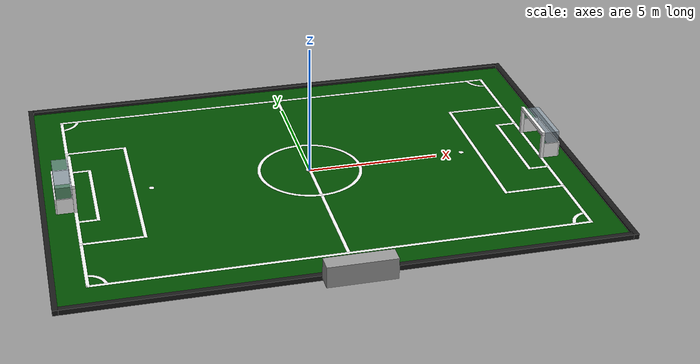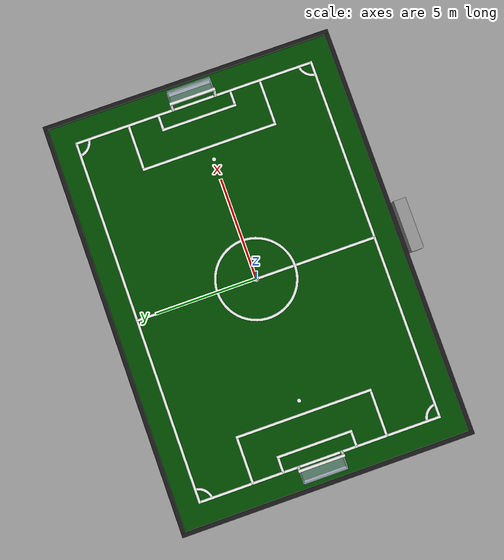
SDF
<sdf version="1.5">
 <world name="default">
  <include><uri>model://sun</uri></include>
  <physics type="ode">
   <max_step_size>0.03125</max_step_size>
   <real_time_update_rate>32</real_time_update_rate>
   <gravity>0 0 -9.8</gravity>
  </physics>
  <include><uri>model://robocup_msl_field</uri></include>
  <include><uri>model://robocup_msl_ball</uri></include>
 </world>
</sdf>

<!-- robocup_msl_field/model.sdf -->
<sdf version="1.5">
  <model name="RoboCup MSL Field">
    <static>true</static>
    <link name="field">
      <pose>0 0 0 0 0 0</pose>

      <!-- FIELD GREEN CARPET:
        Dimensions:
            X = 18m(playable)+2*1m(Spacing) = 20m
            Y = 12m(playable)+2*1m(Spacing) = 14m
    -->
      <collision name="collision">
        <geometry>
          <plane>
            <size>20 14</size>
          </plane>
        </geometry>
        <surface>
          <friction>
            <ode>
              <mu>100</mu>
              <mu2>50</mu2>
            </ode>
          </friction>
        </surface>
      </collision>
      <visual name="carpet">
        <cast_shadows>false</cast_shadows>
        <geometry>
          <plane>
            <size>20 14</size>
          </plane>
        </geometry>
        <material>
            <!-- GREEN -->
            <ambient>0.0 0.2 0.0 1.0</ambient>
            <diffuse>0.0 0.3 0.0 1.0</diffuse>
            <specular>0.0225 0.0225 0.0225 1.0</specular>
        </material>
      </visual>

      <!-- OUTSIDE BARRIERS:
        0.2*0.2 meters, placed outside of the green carpet
     -->
      <collision name="collision_side_barrier1">
      <pose>0 7.1 0.9 0 0 0</pose>
        <geometry>
          <box>
            <size>20 0.2 2</size>
          </box>
        </geometry>
      </collision>
      <visual name="visual_side_barrier1">
      <pose>0 7.1 0.001 0 0 0</pose>
        <geometry>
          <box>
            <size>20 0.2 0.2</size>
          </box>
        </geometry>
        <material>
            <!-- BLACK -->
            <ambient>0.0 0.0 0.0 1.0</ambient>
            <diffuse>0.1 0.1 0.1 1.0</diffuse>
            <specular>0.0225 0.0225 0.0225 1.0</specular>
        </material>
      </visual>
      <collision name="collision_side_barrier2">
      <pose>0 -7.1 0.9 0 0 0</pose>
        <geometry>
          <box>
            <size>20 0.2 2</size>
          </box>
        </geometry>
      </collision>
      <visual name="visual_side_barrier2">
      <pose>0 -7.1 0.001 0 0 0</pose>
        <geometry>
          <box>
            <size>20 0.2 0.2</size>
          </box>
        </geometry>
        <material>
            <!-- BLACK -->
            <ambient>0.0 0.0 0.0 1.0</ambient>
            <diffuse>0.1 0.1 0.1 1.0</diffuse>
            <specular>0.0225 0.0225 0.0225 1.0</specular>
        </material>
      </visual>
      <collision name="collision_end_barrier1">
      <pose>10.1 0 0.9 0 0 0</pose>
        <geometry>
          <box>
            <size>0.2 14.4 2</size>
          </box>
        </geometry>
      </collision>
      <visual name="visual_end_barrier1">
      <pose>10.1 0 0.001 0 0 0</pose>
        <geometry>
          <box>
            <size>0.2 14.4 0.2</size>
          </box>
        </geometry>
        <material>
            <!-- BLACK -->
            <ambient>0.0 0.0 0.0 1.0</ambient>
            <diffuse>0.1 0.1 0.1 1.0</diffuse>
            <specular>0.0225 0.0225 0.0225 1.0</specular>
        </material>
      </visual>
      <collision name="collision_end_barrier2">
      <pose>-10.1 0 0.9 0 0 0</pose>
        <geometry>
          <box>
            <size>0.2 14.4 2</size>
          </box>
        </geometry>
      </collision>
      <visual name="visual_end_barrier2">
      <pose>-10.1 0 0.001 0 0 0</pose>
        <geometry>
          <box>
            <size>0.2 14.4 0.2</size>
          </box>
        </geometry>
        <material>
            <!-- BLACK -->
            <ambient>0.0 0.0 0.0 1.0</ambient>
            <diffuse>0.1 0.1 0.1 1.0</diffuse>
            <specular>0.0225 0.0225 0.0225 1.0</specular>
        </material>
      </visual>

      <!-- FIELD SIDE LINES:
        Line Thickness = 0.125m
        Length = 18m
        Position = Field.Y/2 - Line Thickness/2
     -->
      <visual name="sideline_1">
        <pose>0 5.9375 0.02 0 0 0</pose>
        <cast_shadows>false</cast_shadows>
        <geometry>
          <plane>
            <size>18 0.125</size>
          </plane>
        </geometry>
        <material>
            <!-- WHITE -->
            <ambient>0.8 0.8 0.8 1.0</ambient>
            <diffuse>0.95 0.95 0.95 1.0</diffuse>
            <specular>0.0225 0.0225 0.0225 1.0</specular>
        </material>
      </visual>
      <visual name="sideline_2">
        <pose>0 -5.9375 0.02 0 0 0</pose>
        <cast_shadows>false</cast_shadows>
        <geometry>
          <plane>
            <size>18 0.125</size>
          </plane>
        </geometry>
        <material>
            <!-- WHITE -->
            <ambient>0.8 0.8 0.8 1.0</ambient>
            <diffuse>0.95 0.95 0.95 1.0</diffuse>
            <specular>0.0225 0.0225 0.0225 1.0</specular>
        </material>
      </visual>

      <!-- FIELD END LINES:
        Line Thickness = 0.125m
        Length = 12
        Position = Field.X/2 - Line Thickness/2
     -->
      <visual name="endline_1">
        <pose>-8.9375 0 0.02 0 0 0</pose>
        <cast_shadows>false</cast_shadows>
        <geometry>
          <plane>
            <size>0.125 12</size>
          </plane>
        </geometry>
        <material>
            <!-- WHITE -->
            <ambient>0.8 0.8 0.8 1.0</ambient>
            <diffuse>0.95 0.95 0.95 1.0</diffuse>
            <specular>0.0225 0.0225 0.0225 1.0</specular>
        </material>
      </visual>
      <visual name="endline_2">
        <pose>8.9375 0 0.02 0 0 0</pose>
        <cast_shadows>false</cast_shadows>
        <geometry>
          <plane>
            <size>0.125 12</size>
          </plane>
        </geometry>
        <material>
            <!-- WHITE -->
            <ambient>0.8 0.8 0.8 1.0</ambient>
            <diffuse>0.95 0.95 0.95 1.0</diffuse>
            <specular>0.0225 0.0225 0.0225 1.0</specular>
        </material>
      </visual>

      <!-- CENTER LINE AND CIRCLES
        Center circle diameter = 4m
        Center spot diameter = 0.15m
     -->
      <visual name="halfway_line">
        <pose>0 0 0.02 0 0 0</pose>
        <cast_shadows>false</cast_shadows>
        <geometry>
          <plane>
            <size>0.125 12</size>
          </plane>
        </geometry>
        <material>
            <!-- WHITE -->
            <ambient>0.8 0.8 0.8 1.0</ambient>
            <diffuse>0.95 0.95 0.95 1.0</diffuse>
            <specular>0.0225 0.0225 0.0225 1.0</specular>
        </material>
      </visual>
      <visual name="center_point">
        <pose>0 0 0.02 0 0 0</pose>
        <cast_shadows>false</cast_shadows>
        <geometry>
          <cylinder>
            <radius>0.15</radius>
            <length>0.00001</length>
          </cylinder>
        </geometry>
        <material>
            <!-- WHITE -->
            <ambient>0.8 0.8 0.8 1.0</ambient>
            <diffuse>0.95 0.95 0.95 1.0</diffuse>
            <specular>0.0225 0.0225 0.0225 1.0</specular>
        </material>
      </visual>
      <visual name="center_circle">
        <pose>0 0 0.02 0 0 0</pose>
        <cast_shadows>false</cast_shadows>
        <geometry>
          <mesh>
            <scale>1 1 1</scale>
            <uri>model://robocup_msl_field/meshes/centerline.stl</uri>
          </mesh>
        </geometry>
        <material>
            <!-- WHITE -->
            <ambient>0.8 0.8 0.8 1.0</ambient>
            <diffuse>0.95 0.95 0.95 1.0</diffuse>
            <specular>0.0225 0.0225 0.0225 1.0</specular>
        </material>
      </visual>
      <!-- CORNERS
     -->
     <visual name="corner_1">
        <pose>-9 -6 0.02 0 0 0</pose>
        <cast_shadows>false</cast_shadows>
        <geometry>
          <mesh>
            <scale>1 1 1</scale>
            <uri>model://robocup_msl_field/meshes/corner.stl</uri>
          </mesh>
        </geometry>
        <material>
            <!-- WHITE -->
            <ambient>0.8 0.8 0.8 1.0</ambient>
            <diffuse>0.95 0.95 0.95 1.0</diffuse>
            <specular>0.0225 0.0225 0.0225 1.0</specular>
        </material>
      </visual>
      <visual name="corner_2">
        <pose>9 -6 0.02 0 0 1.57</pose>
        <cast_shadows>false</cast_shadows>
        <geometry>
          <mesh>
            <scale>1 1 1</scale>
            <uri>model://robocup_msl_field/meshes/corner.stl</uri>
          </mesh>
        </geometry>
        <material>
            <!-- WHITE -->
            <ambient>0.8 0.8 0.8 1.0</ambient>
            <diffuse>0.95 0.95 0.95 1.0</diffuse>
            <specular>0.0225 0.0225 0.0225 1.0</specular>
        </material>
      </visual>
      <visual name="corner_3">
        <pose>-9 6 0.02 0 0 -1.57</pose>
        <cast_shadows>false</cast_shadows>
        <geometry>
          <mesh>
            <scale>1 1 1</scale>
            <uri>model://robocup_msl_field/meshes/corner.stl</uri>
          </mesh>
        </geometry>
        <material>
            <!-- WHITE -->
            <ambient>0.8 0.8 0.8 1.0</ambient>
            <diffuse>0.95 0.95 0.95 1.0</diffuse>
            <specular>0.0225 0.0225 0.0225 1.0</specular>
        </material>
      </visual>
      <visual name="corner_4">
        <pose>9 6 0.02 0 0 3.14</pose>
        <cast_shadows>false</cast_shadows>
        <geometry>
          <mesh>
            <scale>1 1 1</scale>
            <uri>model://robocup_msl_field/meshes/corner.stl</uri>
          </mesh>
        </geometry>
        <material>
            <!-- WHITE -->
            <ambient>0.8 0.8 0.8 1.0</ambient>
            <diffuse>0.95 0.95 0.95 1.0</diffuse>
            <specular>0.0225 0.0225 0.0225 1.0</specular>
        </material>
      </visual>

      <!-- AREA 1
     -->
      <visual name="b_area_1_side_1">
        <pose>-7.875 -3.313 0.02 0 0 0</pose>
        <cast_shadows>false</cast_shadows>
        <geometry>
          <plane>
            <size>2.25 0.125</size>
          </plane>
        </geometry>
        <material>
            <!-- WHITE -->
            <ambient>0.8 0.8 0.8 1.0</ambient>
            <diffuse>0.95 0.95 0.95 1.0</diffuse>
            <specular>0.0225 0.0225 0.0225 1.0</specular>
        </material>
      </visual>
    <visual name="b_area_1_side_2">
        <pose>-7.875 3.313 0.02 0 0 0</pose>
        <cast_shadows>false</cast_shadows>
        <geometry>
          <plane>
            <size>2.25 0.125</size>
          </plane>
        </geometry>
        <material>
            <!-- WHITE -->
            <ambient>0.8 0.8 0.8 1.0</ambient>
            <diffuse>0.95 0.95 0.95 1.0</diffuse>
            <specular>0.0225 0.0225 0.0225 1.0</specular>
        </material>
      </visual>
      <visual name="b_area_1_front">
        <pose>-6.6875 0 0.02 0 0 0</pose>
        <cast_shadows>false</cast_shadows>
        <geometry>
          <plane>
            <size>0.125 6.75</size>
          </plane>
        </geometry>
        <material>
            <!-- WHITE -->
            <ambient>0.8 0.8 0.8 1.0</ambient>
            <diffuse>0.95 0.95 0.95 1.0</diffuse>
            <specular>0.0225 0.0225 0.0225 1.0</specular>
        </material>
      </visual>

      <visual name="s_area_1_side_1">
        <pose>-8.625 -1.813 0.02 0 0 0</pose>
        <cast_shadows>false</cast_shadows>
        <geometry>
          <plane>
            <size>0.75 0.125</size>
          </plane>
        </geometry>
        <material>
            <!-- WHITE -->
            <ambient>0.8 0.8 0.8 1.0</ambient>
            <diffuse>0.95 0.95 0.95 1.0</diffuse>
            <specular>0.0225 0.0225 0.0225 1.0</specular>
        </material>
      </visual>
    <visual name="s_area_1_side_2">
        <pose>-8.625 1.813 0.02 0 0 0</pose>
        <cast_shadows>false</cast_shadows>
        <geometry>
          <plane>
            <size>0.75 0.125</size>
          </plane>
        </geometry>
        <material>
            <!-- WHITE -->
            <ambient>0.8 0.8 0.8 1.0</ambient>
            <diffuse>0.95 0.95 0.95 1.0</diffuse>
            <specular>0.0225 0.0225 0.0225 1.0</specular>
        </material>
      </visual>
      <visual name="s_area_1_front">
        <pose>-8.187 0 0.02 0 0 0</pose>
        <cast_shadows>false</cast_shadows>
        <geometry>
          <plane>
            <size>0.125 3.75</size>
          </plane>
        </geometry>
        <material>
            <!-- WHITE -->
            <ambient>0.8 0.8 0.8 1.0</ambient>
            <diffuse>0.95 0.95 0.95 1.0</diffuse>
            <specular>0.0225 0.0225 0.0225 1.0</specular>
        </material>
      </visual>
      <visual name="spot_1">
        <pose>-6.05 0 0.02 0 0 0</pose>
        <cast_shadows>false</cast_shadows>
        <geometry>
          <cylinder>
            <radius>0.1</radius>
            <length>0.00001</length>
          </cylinder>
        </geometry>
        <material>
            <!-- WHITE -->
            <ambient>0.8 0.8 0.8 1.0</ambient>
            <diffuse>0.95 0.95 0.95 1.0</diffuse>
            <specular>0.0225 0.0225 0.0225 1.0</specular>
        </material>
      </visual>

      <!-- AREA 2
     -->
      <visual name="b_area_2_side_1">
        <pose>7.875 -3.313 0.02 0 0 0</pose>
        <cast_shadows>false</cast_shadows>
        <geometry>
          <plane>
            <size>2.25 0.125</size>
          </plane>
        </geometry>
        <material>
            <!-- WHITE -->
            <ambient>0.8 0.8 0.8 1.0</ambient>
            <diffuse>0.95 0.95 0.95 1.0</diffuse>
            <specular>0.0225 0.0225 0.0225 1.0</specular>
        </material>
      </visual>
    <visual name="b_area_2_side_2">
        <pose>7.875 3.313 0.02 0 0 0</pose>
        <cast_shadows>false</cast_shadows>
        <geometry>
          <plane>
            <size>2.25 0.125</size>
          </plane>
        </geometry>
        <material>
            <!-- WHITE -->
            <ambient>0.8 0.8 0.8 1.0</ambient>
            <diffuse>0.95 0.95 0.95 1.0</diffuse>
            <specular>0.0225 0.0225 0.0225 1.0</specular>
        </material>
      </visual>
      <visual name="b_area_2_front">
        <pose>6.6875 0 0.02 0 0 0</pose>
        <cast_shadows>false</cast_shadows>
        <geometry>
          <plane>
            <size>0.125 6.75</size>
          </plane>
        </geometry>
        <material>
            <!-- WHITE -->
            <ambient>0.8 0.8 0.8 1.0</ambient>
            <diffuse>0.95 0.95 0.95 1.0</diffuse>
            <specular>0.0225 0.0225 0.0225 1.0</specular>
        </material>
      </visual>

      <visual name="s_area_2_side_1">
        <pose>8.625 -1.813 0.02 0 0 0</pose>
        <cast_shadows>false</cast_shadows>
        <geometry>
          <plane>
            <size>0.75 0.125</size>
          </plane>
        </geometry>
        <material>
            <!-- WHITE -->
            <ambient>0.8 0.8 0.8 1.0</ambient>
            <diffuse>0.95 0.95 0.95 1.0</diffuse>
            <specular>0.0225 0.0225 0.0225 1.0</specular>
        </material>
      </visual>
    <visual name="s_area_2_side_2">
        <pose>8.625 1.813 0.02 0 0 0</pose>
        <cast_shadows>false</cast_shadows>
        <geometry>
          <plane>
            <size>0.75 0.125</size>
          </plane>
        </geometry>
        <material>
            <!-- WHITE -->
            <ambient>0.8 0.8 0.8 1.0</ambient>
            <diffuse>0.95 0.95 0.95 1.0</diffuse>
            <specular>0.0225 0.0225 0.0225 1.0</specular>
        </material>
      </visual>
      <visual name="s_area_2_front">
        <pose>8.187 0 0.02 0 0 0</pose>
        <cast_shadows>false</cast_shadows>
        <geometry>
          <plane>
            <size>0.125 3.75</size>
          </plane>
        </geometry>
        <material>
            <!-- WHITE -->
            <ambient>0.8 0.8 0.8 1.0</ambient>
            <diffuse>0.95 0.95 0.95 1.0</diffuse>
            <specular>0.0225 0.0225 0.0225 1.0</specular>
        </material>
      </visual>
      <visual name="spot_2">
        <pose>6.05 0 0.02 0 0 0</pose>
        <cast_shadows>false</cast_shadows>
        <geometry>
          <cylinder>
            <radius>0.1</radius>
            <length>0.00001</length>
          </cylinder>
        </geometry>
        <material>
            <!-- WHITE -->
            <ambient>0.8 0.8 0.8 1.0</ambient>
            <diffuse>0.95 0.95 0.95 1.0</diffuse>
            <specular>0.0225 0.0225 0.0225 1.0</specular>
        </material>
      </visual>
    </link>

    <!-- REFBOX
     -->
    <link name="ref_box_table">
      <collision name="collision_ref">
        <pose>0 -7.5 0.4 0 0 0</pose>
        <geometry>
          <box>
            <size>2.5 0.6 0.8</size>
         </box>
         </geometry>
      </collision>
      <visual name="refbox">
        <pose>0 -7.5 0.4 0 0 0</pose>
        <cast_shadows>true</cast_shadows>
        <geometry>
          <box>
            <size>2.5 0.6 0.8</size>
          </box>
        </geometry>
        <material>
            <!-- GREY -->
            <ambient>0.4 0.4 0.4 1.0</ambient>
            <diffuse>0.6 0.6 0.6 1.0</diffuse>
            <specular>0.0225 0.0225 0.0225 1.0</specular>
        </material>
      </visual>
    </link>

    <!-- GOALIE 1
     -->
    <link name="goalie_1">
      <collision name="collision_post1_g1">
        <pose>-8.9375 -1.0625 0.5 0 0 0</pose>
        <geometry>
          <box>
            <size>0.125 0.125 1</size>
         </box>
         </geometry>
      </collision>
      <visual name="post1_g1">
        <pose>-8.9375 -1.0625 0.5 0 0 0</pose>
        <cast_shadows>true</cast_shadows>
        <geometry>
          <box>
            <size>0.125 0.125 1</size>
         </box>
         </geometry>
        <material>
            <!-- WHITE -->
            <ambient>0.8 0.8 0.8 1.0</ambient>
            <diffuse>0.95 0.95 0.95 1.0</diffuse>
            <specular>0.0225 0.0225 0.0225 1.0</specular>
        </material>
      </visual>
      <collision name="collision_post2_g1">
        <pose>-8.9375 1.0625 0.5 0 0 0</pose>
        <geometry>
          <box>
            <size>0.125 0.125 1</size>
         </box>
         </geometry>
      </collision>
      <visual name="post2_g1">
        <pose>-8.9375 1.0625 0.5 0 0 0</pose>
        <cast_shadows>true</cast_shadows>
        <geometry>
          <box>
            <size>0.125 0.125 1</size>
         </box>
         </geometry>
        <material>
            <!-- WHITE -->
            <ambient>0.8 0.8 0.8 1.0</ambient>
            <diffuse>0.95 0.95 0.95 1.0</diffuse>
            <specular>0.0225 0.0225 0.0225 1.0</specular>
        </material>
      </visual>
      <collision name="collision_crossbar_g1">
        <pose>-8.9375 0 1.0625 0 0 0</pose>
        <geometry>
          <box>
            <size>0.125 2.25 0.125</size>
         </box>
         </geometry>
      </collision>
      <visual name="crossbar_g1">
        <pose>-8.9375 0 1.0625 0 0 0</pose>
        <cast_shadows>true</cast_shadows>
        <geometry>
          <box>
            <size>0.125 2.25 0.125</size>
         </box>
         </geometry>
        <material>
            <!-- WHITE -->
            <ambient>0.8 0.8 0.8 1.0</ambient>
            <diffuse>0.95 0.95 0.95 1.0</diffuse>
            <specular>0.0225 0.0225 0.0225 1.0</specular>
        </material>
      </visual>
      <collision name="collision_back_g1">
        <pose>-9.625 0 0.3 0 0 0</pose>
        <geometry>
          <box>
            <size>0.05 2.175 0.6</size>
         </box>
         </geometry>
      </collision>
      <visual name="back_g1">
        <pose>-9.625 0 0.3 0 0 0</pose>
        <cast_shadows>true</cast_shadows>
        <geometry>
          <box>
            <size>0.05 2.175 0.6</size>
         </box>
         </geometry>
        <material>
            <!-- WHITE -->
            <ambient>0.8 0.8 0.8 1.0</ambient>
            <diffuse>0.95 0.95 0.95 1.0</diffuse>
            <specular>0.0225 0.0225 0.0225 1.0</specular>
        </material>
      </visual>
      <collision name="collision_side1_g1">
        <pose>-9.3 -1.0625 0.3 0 0 0</pose>
        <geometry>
          <box>
            <size>0.6 0.05 0.6</size>
         </box>
         </geometry>
      </collision>
      <visual name="side1_g1">
        <pose>-9.3 -1.0625 0.3 0 0 0</pose>
        <cast_shadows>true</cast_shadows>
        <geometry>
          <box>
            <size>0.6 0.05 0.6</size>
         </box>
         </geometry>
        <material>
            <!-- WHITE -->
            <ambient>0.8 0.8 0.8 1.0</ambient>
            <diffuse>0.95 0.95 0.95 1.0</diffuse>
            <specular>0.0225 0.0225 0.0225 1.0</specular>
        </material>
      </visual>
      <collision name="collision_side2_g1">
        <pose>-9.3 1.0625 0.3 0 0 0</pose>
        <geometry>
          <box>
            <size>0.6 0.05 0.6</size>
         </box>
         </geometry>
      </collision>
      <visual name="side2_g1">
        <pose>-9.3 1.0625 0.3 0 0 0</pose>
        <cast_shadows>true</cast_shadows>
        <geometry>
          <box>
            <size>0.6 0.05 0.6</size>
         </box>
         </geometry>
        <material>
            <!-- WHITE -->
            <ambient>0.8 0.8 0.8 1.0</ambient>
            <diffuse>0.95 0.95 0.95 1.0</diffuse>
            <specular>0.0225 0.0225 0.0225 1.0</specular>
        </material>
      </visual>
      <!-- Net
     -->
     <collision name="collision_net_u_g1">
        <pose>-9.3 0 1.0625 0 0 0</pose>
        <geometry>
          <box>
            <size>0.6 2.125 0.001</size>
         </box>
         </geometry>
      </collision>
      <visual name="net_u_g1">
        <pose>-9.3 0 1.0625 0 0 0</pose>
        <cast_shadows>true</cast_shadows>
        <geometry>
          <box>
            <size>0.6 2.125 0.001</size>
         </box>
         </geometry>
        <material>
            <!-- GLASS -->
            <ambient>0.2 0.2 0.2 1.0</ambient>
            <diffuse>0.588235 0.670588 0.729412 0.6</diffuse>
            <specular>0.9 0.9 0.9 1.0</specular>
        </material>
      </visual>
      <collision name="collision_net_b_g1">
        <pose>-9.6 0 0.8313 0 1.57 0</pose>
        <geometry>
          <box>
            <size>0.4625 2.125 0.001</size>
         </box>
         </geometry>
      </collision>
      <visual name="net_b_g1">
        <pose>-9.6 0 0.8313 0 1.57 0</pose>
        <cast_shadows>true</cast_shadows>
        <geometry>
          <box>
            <size>0.4625 2.125 0.001</size>
         </box>
         </geometry>
        <material>
            <!-- GLASS -->
            <ambient>0.2 0.2 0.2 1.0</ambient>
            <diffuse>0.588235 0.670588 0.729412 0.6</diffuse>
            <specular>0.9 0.9 0.9 1.0</specular>
        </material>
      </visual>
      <collision name="collision_net_s1_g1">
        <pose>-9.3 -1.0625 0.8313 1.57 0 0</pose>
        <geometry>
          <box>
            <size>0.6 0.4625 0.001</size>
         </box>
         </geometry>
      </collision>
      <visual name="net_s1_g1">
        <pose>-9.3 -1.0625 0.8313 1.57 0 0</pose>
        <cast_shadows>true</cast_shadows>
        <geometry>
          <box>
            <size>0.6 0.4625 0.001</size>
         </box>
         </geometry>
        <material>
            <!-- GLASS -->
            <ambient>0.2 0.2 0.2 1.0</ambient>
            <diffuse>0.588235 0.670588 0.729412 0.6</diffuse>
            <specular>0.9 0.9 0.9 1.0</specular>
        </material>
      </visual>
      <collision name="collision_net_s2_g1">
        <pose>-9.3 1.0625 0.8313 1.57 0 0</pose>
        <geometry>
          <box>
            <size>0.6 0.4625 0.001</size>
         </box>
         </geometry>
      </collision>
      <visual name="net_s2_g1">
        <pose>-9.3 1.0625 0.8313 1.57 0 0</pose>
        <cast_shadows>true</cast_shadows>
        <geometry>
          <box>
            <size>0.6 0.4625 0.001</size>
         </box>
         </geometry>
        <material>
            <!-- GLASS -->
            <ambient>0.2 0.2 0.2 1.0</ambient>
            <diffuse>0.588235 0.670588 0.729412 0.6</diffuse>
            <specular>0.9 0.9 0.9 1.0</specular>
        </material>
      </visual>
    </link>
    <!-- GOALIE 2
     -->
    <link name="goalie_2">
      <collision name="collision_post1_g2">
        <pose>8.9375 -1.0625 0.5 0 0 0</pose>
        <geometry>
          <box>
            <size>0.125 0.125 1</size>
         </box>
         </geometry>
      </collision>
      <visual name="post1_g2">
        <pose>8.9375 -1.0625 0.5 0 0 0</pose>
        <cast_shadows>true</cast_shadows>
        <geometry>
          <box>
            <size>0.125 0.125 1</size>
         </box>
         </geometry>
        <material>
            <!-- WHITE -->
            <ambient>0.8 0.8 0.8 1.0</ambient>
            <diffuse>0.95 0.95 0.95 1.0</diffuse>
            <specular>0.0225 0.0225 0.0225 1.0</specular>
        </material>
      </visual>
      <collision name="collision_post2_g2">
        <pose>8.9375 1.0625 0.5 0 0 0</pose>
        <geometry>
          <box>
            <size>0.125 0.125 1</size>
         </box>
         </geometry>
      </collision>
      <visual name="post2_g2">
        <pose>8.9375 1.0625 0.5 0 0 0</pose>
        <cast_shadows>true</cast_shadows>
        <geometry>
          <box>
            <size>0.125 0.125 1</size>
         </box>
         </geometry>
        <material>
            <!-- WHITE -->
            <ambient>0.8 0.8 0.8 1.0</ambient>
            <diffuse>0.95 0.95 0.95 1.0</diffuse>
            <specular>0.0225 0.0225 0.0225 1.0</specular>
        </material>
      </visual>
      <collision name="collision_crossbar_g2">
        <pose>8.9375 0 1.0625 0 0 0</pose>
        <geometry>
          <box>
            <size>0.125 2.25 0.125</size>
         </box>
         </geometry>
      </collision>
      <visual name="crossbar_g2">
        <pose>8.9375 0 1.0625 0 0 0</pose>
        <cast_shadows>true</cast_shadows>
        <geometry>
          <box>
            <size>0.125 2.25 0.125</size>
         </box>
         </geometry>
        <material>
            <!-- WHITE -->
            <ambient>0.8 0.8 0.8 1.0</ambient>
            <diffuse>0.95 0.95 0.95 1.0</diffuse>
            <specular>0.0225 0.0225 0.0225 1.0</specular>
        </material>
      </visual>
      <collision name="collision_back_g2">
        <pose>9.625 0 0.3 0 0 0</pose>
        <geometry>
          <box>
            <size>0.05 2.175 0.6</size>
         </box>
         </geometry>
      </collision>
      <visual name="back_g2">
        <pose>9.625 0 0.3 0 0 0</pose>
        <cast_shadows>true</cast_shadows>
        <geometry>
          <box>
            <size>0.05 2.175 0.6</size>
         </box>
         </geometry>
        <material>
            <!-- WHITE -->
            <ambient>0.8 0.8 0.8 1.0</ambient>
            <diffuse>0.95 0.95 0.95 1.0</diffuse>
            <specular>0.0225 0.0225 0.0225 1.0</specular>
        </material>
      </visual>
      <collision name="collision_side1_g2">
        <pose>9.3 -1.0625 0.3 0 0 0</pose>
        <geometry>
          <box>
            <size>0.6 0.05 0.6</size>
         </box>
         </geometry>
      </collision>
      <visual name="side1_g2">
        <pose>9.3 -1.0625 0.3 0 0 0</pose>
        <cast_shadows>true</cast_shadows>
        <geometry>
          <box>
            <size>0.6 0.05 0.6</size>
         </box>
         </geometry>
        <material>
            <!-- WHITE -->
            <ambient>0.8 0.8 0.8 1.0</ambient>
            <diffuse>0.95 0.95 0.95 1.0</diffuse>
            <specular>0.0225 0.0225 0.0225 1.0</specular>
        </material>
      </visual>
      <collision name="collision_side2_g2">
        <pose>9.3 1.0625 0.3 0 0 0</pose>
        <geometry>
          <box>
            <size>0.6 0.05 0.6</size>
         </box>
         </geometry>
      </collision>
      <visual name="side2_g2">
        <pose>9.3 1.0625 0.3 0 0 0</pose>
        <cast_shadows>true</cast_shadows>
        <geometry>
          <box>
            <size>0.6 0.05 0.6</size>
         </box>
         </geometry>
        <material>
            <!-- WHITE -->
            <ambient>0.8 0.8 0.8 1.0</ambient>
            <diffuse>0.95 0.95 0.95 1.0</diffuse>
            <specular>0.0225 0.0225 0.0225 1.0</specular>
        </material>
      </visual>
       <!-- Net
     -->
     <collision name="collision_net_u_g2">
        <pose>9.3 0 1.0625 0 0 0</pose>
        <geometry>
          <box>
            <size>0.6 2.125 0.001</size>
         </box>
         </geometry>
      </collision>
      <visual name="net_u_g2">
        <pose>9.3 0 1.0625 0 0 0</pose>
        <cast_shadows>true</cast_shadows>
        <geometry>
          <box>
            <size>0.6 2.125 0.001</size>
         </box>
         </geometry>
        <material>
            <!-- GLASS -->
            <ambient>0.2 0.2 0.2 1.0</ambient>
            <diffuse>0.588235 0.670588 0.729412 0.6</diffuse>
            <specular>0.9 0.9 0.9 1.0</specular>
        </material>
      </visual>
      <collision name="collision_net_b_g2">
        <pose>9.6 0 0.8313 0 1.57 0</pose>
        <geometry>
          <box>
            <size>0.4625 2.125 0.001</size>
         </box>
         </geometry>
      </collision>
      <visual name="net_b_g2">
        <pose>9.6 0 0.8313 0 1.57 0</pose>
        <cast_shadows>true</cast_shadows>
        <geometry>
          <box>
            <size>0.4625 2.125 0.001</size>
         </box>
         </geometry>
        <material>
            <!-- GLASS -->
            <ambient>0.2 0.2 0.2 1.0</ambient>
            <diffuse>0.588235 0.670588 0.729412 0.6</diffuse>
            <specular>0.9 0.9 0.9 1.0</specular>
        </material>
      </visual>
      <collision name="collision_net_s1_g2">
        <pose>9.3 -1.0625 0.8313 1.57 0 0</pose>
        <geometry>
          <box>
            <size>0.6 0.4625 0.001</size>
         </box>
         </geometry>
      </collision>
      <visual name="net_s1_g2">
        <pose>9.3 -1.0625 0.8313 1.57 0 0</pose>
        <cast_shadows>true</cast_shadows>
        <geometry>
          <box>
            <size>0.6 0.4625 0.001</size>
         </box>
         </geometry>
        <material>
            <!-- GLASS -->
            <ambient>0.2 0.2 0.2 1.0</ambient>
            <diffuse>0.588235 0.670588 0.729412 0.6</diffuse>
            <specular>0.9 0.9 0.9 1.0</specular>
        </material>
      </visual>
      <collision name="collision_net_s2_g2">
        <pose>9.3 1.0625 0.8313 1.57 0 0</pose>
        <geometry>
          <box>
            <size>0.6 0.4625 0.001</size>
         </box>
         </geometry>
      </collision>
      <visual name="net_s2_g2">
        <pose>9.3 1.0625 0.8313 1.57 0 0</pose>
        <cast_shadows>true</cast_shadows>
        <geometry>
          <box>
            <size>0.6 0.4625 0.001</size>
         </box>
         </geometry>
        <material>
            <!-- GLASS -->
            <ambient>0.2 0.2 0.2 1.0</ambient>
            <diffuse>0.588235 0.670588 0.729412 0.6</diffuse>
            <specular>0.9 0.9 0.9 1.0</specular>
        </material>
      </visual>
    </link>
  </model>
</sdf>

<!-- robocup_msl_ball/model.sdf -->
<sdf version="1.5">
  <model name="RoboCup MSL Ball">
    <static>false</static>
    <link name="ball">
        <inertial>
          <mass>0.41</mass>
          <inertia>
            <ixx>3.2e-03</ixx>
            <iyy>3.2e-03</iyy>
            <izz>3.2e-03</izz>
            <ixy>0</ixy>
            <ixz>0</ixz>
            <iyz>0</iyz>
          </inertia>
        </inertial>
      <collision name="collision">
        <geometry>
          <sphere>
            <radius>0.11</radius>
          </sphere>
        </geometry>
        <surface>
            <bounce>
              <restitution_coefficient>0.8</restitution_coefficient>
              <threshold>0.01</threshold>
            </bounce>
            <friction>
              <ode>
                <mu>0.1</mu>
                <mu2>0.1</mu2>
              </ode>
            </friction>
            <contact>
              <ode>
                <max_vel>30</max_vel>
              </ode>
            </contact>
          </surface>
      </collision>
      <visual name="visual">
        <geometry>
            <sphere>
            <radius>0.11</radius>
          </sphere>
         </geometry>
      </visual>

      <velocity_decay>
        <linear>0.00001</linear>
        <angular>0.0005</angular>
      </velocity_decay>
      <self_collide>false</self_collide>
      <gravity>true</gravity>
    </link>
  </model>
</sdf>
